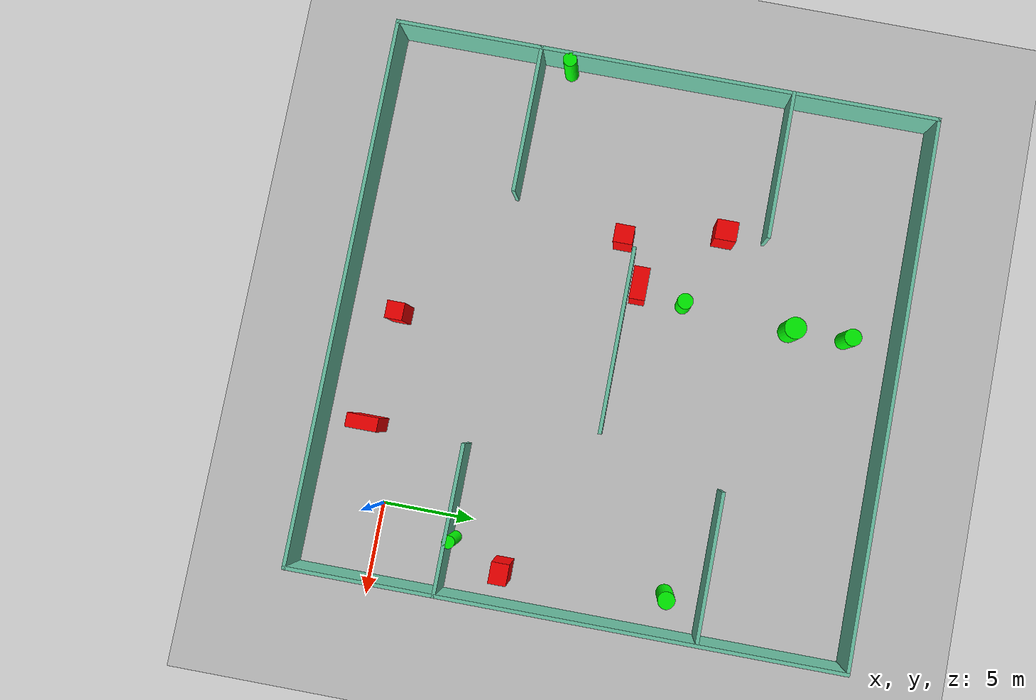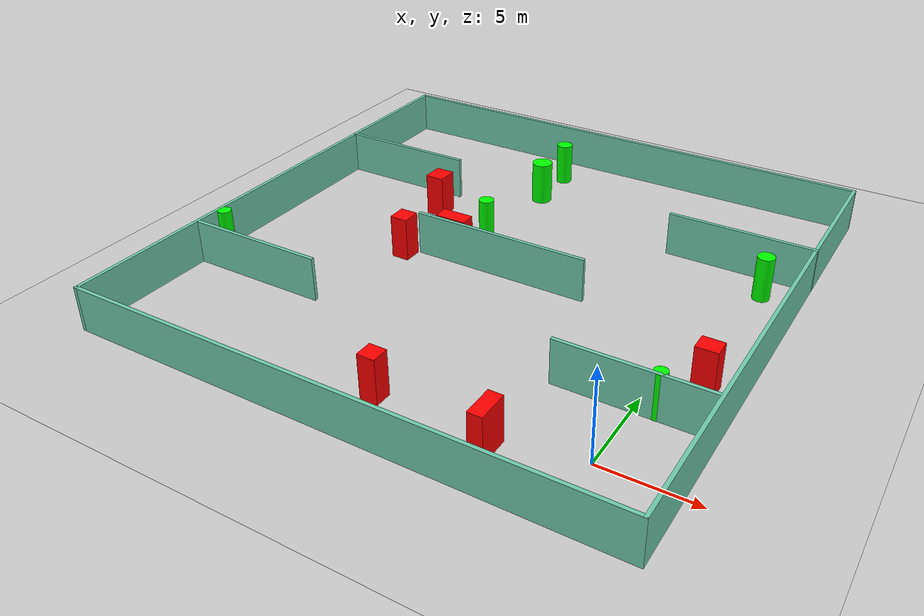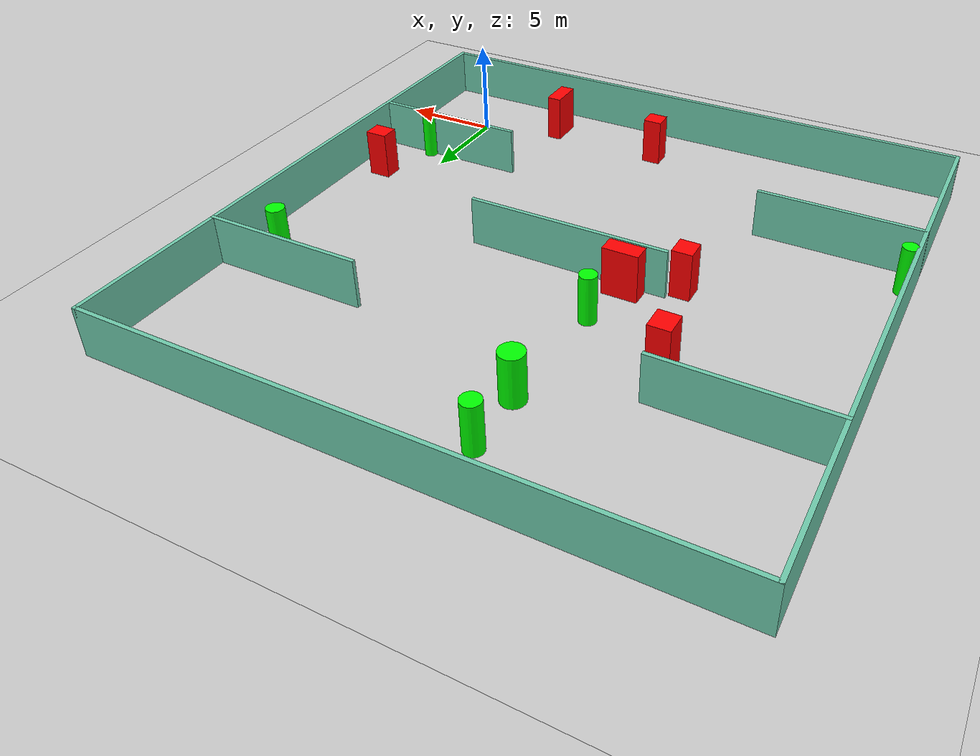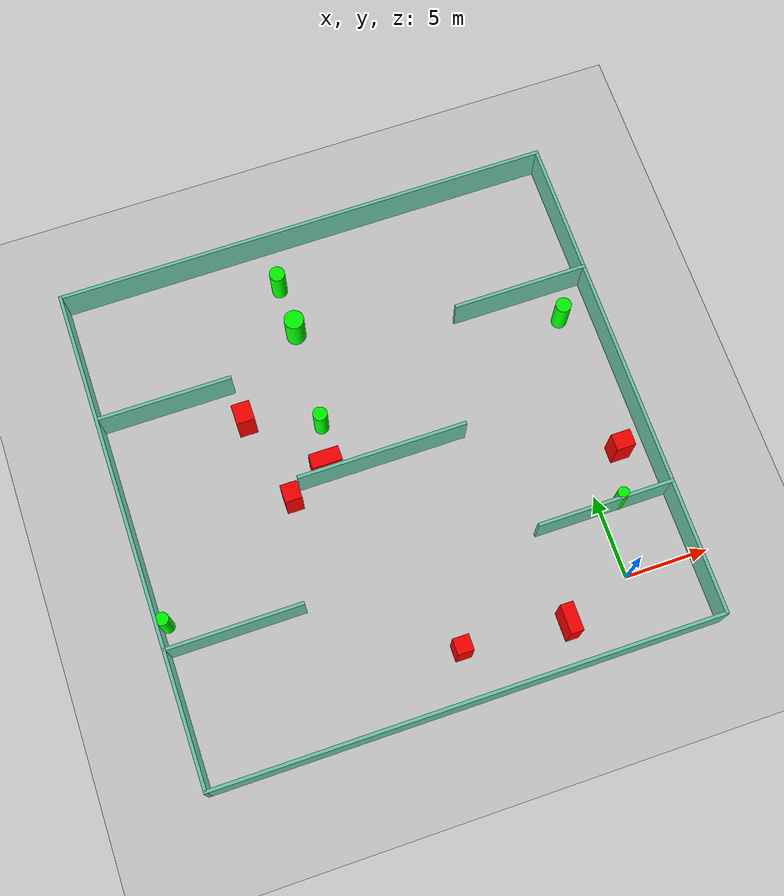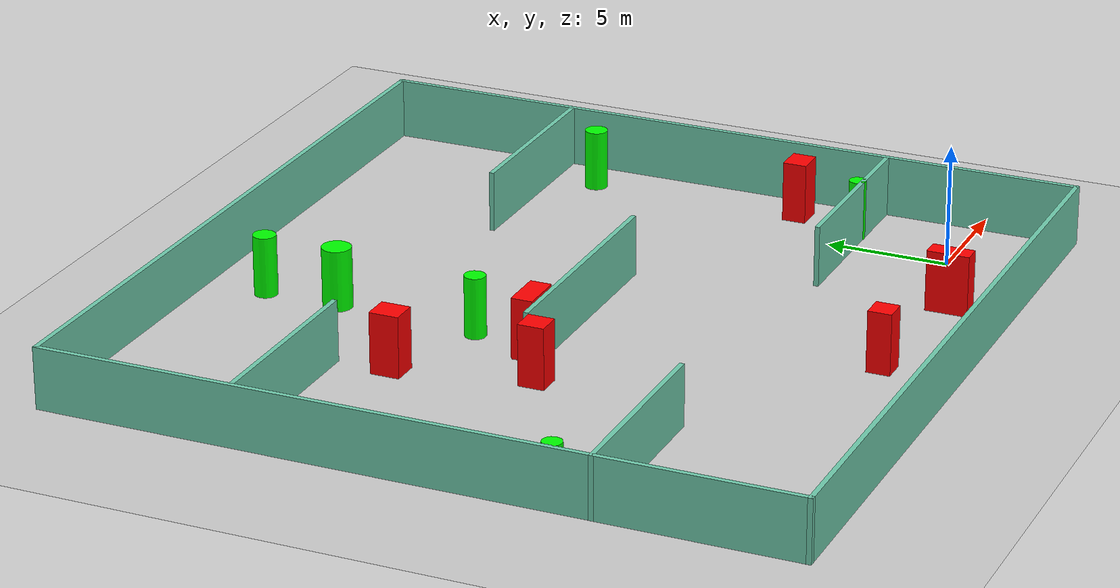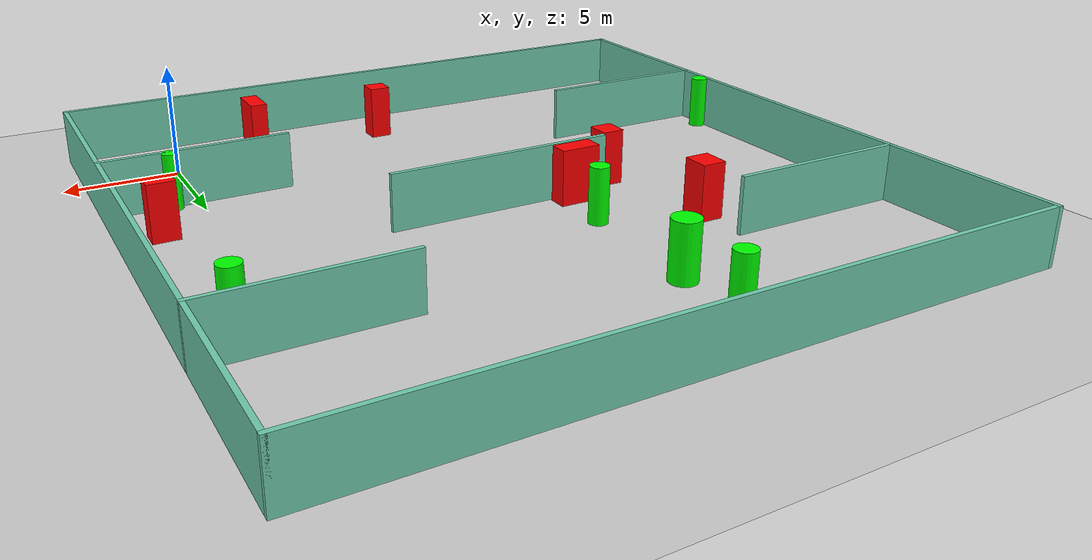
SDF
<sdf version="1.7">
 <world name="default">
  <light name="sun" type="directional">
   <pose>0 0 10 0 -0 0</pose>
   <diffuse>0.8 0.8 0.8 1</diffuse>
   <specular>0.2 0.2 0.2 1</specular>
   <attenuation>
    <range>1000</range>
    <constant>0.9</constant>
    <linear>0.01</linear>
    <quadratic>0.001</quadratic>
   </attenuation>
   <direction>-0.5 0.1 -0.9</direction>
   <spot><inner_angle>0</inner_angle><outer_angle>0</outer_angle><falloff>0</falloff></spot>
  </light>
  <model name="ground_plane">
   <static>1</static>
   <link name="link">
    <collision name="collision">
     <geometry><plane><normal>0 0 1</normal><size>100 100</size></plane></geometry>
     <surface>
      <contact><collide_bitmask>65535</collide_bitmask></contact>
      <friction><ode><mu>100</mu><mu2>50</mu2></ode></friction>
     </surface>
    </collision>
    <visual name="visual">
     <cast_shadows>0</cast_shadows>
     <geometry><plane><normal>0 0 1</normal><size>100 100</size></plane></geometry>
     <material>
      <script><uri>file://media/materials/scripts/gazebo.material</uri><name>Gazebo/Grey</name></script>
     </material>
    </visual>
   </link>
  </model>
  <gravity>0 0 -9.8</gravity>
  <magnetic_field>6e-06 2.3e-05 -4.2e-05</magnetic_field>
  <atmosphere type="adiabatic"/>
  <physics type="ode">
   <max_step_size>0.001</max_step_size>
   <real_time_factor>1</real_time_factor>
   <real_time_update_rate>1000</real_time_update_rate>
  </physics>
  <scene><ambient>0.4 0.4 0.4 1</ambient><background>0.7 0.7 0.7 1</background><shadows>1</shadows></scene>
  <spherical_coordinates>
   <surface_model>EARTH_WGS84</surface_model>
   <latitude_deg>0</latitude_deg>
   <longitude_deg>0</longitude_deg>
   <elevation>0</elevation>
   <heading_deg>0</heading_deg>
  </spherical_coordinates>
  <model name="my_base_walls">
   <link name="Wall_10">
    <collision name="Wall_10_Collision">
     <geometry><box><size>8.2 0.2 2.5</size></box></geometry>
     <pose>0 0 1.25 0 -0 0</pose>
    </collision>
    <visual name="Wall_10_Visual">
     <pose>0 0 1.25 0 -0 0</pose>
     <geometry><box><size>8.2 0.2 2.5</size></box></geometry>
     <material>
      <script><uri>file://media/materials/scripts/gazebo.material</uri><name>Gazebo/Grey</name></script>
      <ambient>0.435294 0.796078 0.67451 1</ambient>
     </material>
     <meta><layer>0</layer></meta>
    </visual>
    <pose>-11 -7 0 0 -0 0</pose>
   </link>
   <link name="Wall_12">
    <collision name="Wall_12_Collision">
     <geometry><box><size>8.2 0.2 2.5</size></box></geometry>
     <pose>0 0 1.25 0 -0 0</pose>
    </collision>
    <visual name="Wall_12_Visual">
     <pose>0 0 1.25 0 -0 0</pose>
     <geometry><box><size>8.2 0.2 2.5</size></box></geometry>
     <material>
      <script><uri>file://media/materials/scripts/gazebo.material</uri><name>Gazebo/Grey</name></script>
      <ambient>0.435294 0.796078 0.67451 1</ambient>
     </material>
     <meta><layer>0</layer></meta>
    </visual>
    <pose>-11 7 0 0 -0 0</pose>
   </link>
   <link name="Wall_14">
    <collision name="Wall_14_Collision">
     <geometry><box><size>8.2 0.2 2.5</size></box></geometry>
     <pose>0 0 1.25 0 -0 0</pose>
    </collision>
    <visual name="Wall_14_Visual">
     <pose>0 0 1.25 0 -0 0</pose>
     <geometry><box><size>8.2 0.2 2.5</size></box></geometry>
     <material>
      <script><uri>file://media/materials/scripts/gazebo.material</uri><name>Gazebo/Grey</name></script>
      <ambient>0.435294 0.796078 0.67451 1</ambient>
     </material>
     <meta><layer>0</layer></meta>
    </visual>
    <pose>11 7 0 0 -0 3.14159</pose>
   </link>
   <link name="Wall_16">
    <collision name="Wall_16_Collision">
     <geometry><box><size>10.2 0.2 2.5</size></box></geometry>
     <pose>0 0 1.25 0 -0 0</pose>
    </collision>
    <visual name="Wall_16_Visual">
     <pose>0 0 1.25 0 -0 0</pose>
     <geometry><box><size>10.2 0.2 2.5</size></box></geometry>
     <material>
      <script><uri>file://media/materials/scripts/gazebo.material</uri><name>Gazebo/Grey</name></script>
      <ambient>0.435294 0.796078 0.67451 1</ambient>
     </material>
     <meta><layer>0</layer></meta>
    </visual>
    <pose>0 0 0 0 -0 3.14159</pose>
   </link>
   <link name="Wall_2">
    <collision name="Wall_2_Collision">
     <geometry><box><size>30.2 0.2 2.5</size></box></geometry>
     <pose>0 0 1.25 0 -0 0</pose>
    </collision>
    <visual name="Wall_2_Visual">
     <pose>0 0 1.25 0 -0 0</pose>
     <geometry><box><size>30.2 0.2 2.5</size></box></geometry>
     <material>
      <script><uri>file://media/materials/scripts/gazebo.material</uri><name>Gazebo/Grey</name></script>
      <ambient>0.435294 0.796078 0.67451 1</ambient>
     </material>
     <meta><layer>0</layer></meta>
    </visual>
    <pose>0 -15 0 0 -0 3.14159</pose>
   </link>
   <link name="Wall_3">
    <collision name="Wall_3_Collision">
     <geometry><box><size>30.2 0.2 2.5</size></box></geometry>
     <pose>0 0 1.25 0 -0 0</pose>
    </collision>
    <visual name="Wall_3_Visual">
     <pose>0 0 1.25 0 -0 0</pose>
     <geometry><box><size>30.2 0.2 2.5</size></box></geometry>
     <material>
      <script><uri>file://media/materials/scripts/gazebo.material</uri><name>Gazebo/Grey</name></script>
      <ambient>0.435294 0.796078 0.67451 1</ambient>
     </material>
     <meta><layer>0</layer></meta>
    </visual>
    <pose>-15 0 0 0 -0 1.5708</pose>
   </link>
   <link name="Wall_4">
    <collision name="Wall_4_Collision">
     <geometry><box><size>30.2 0.2 2.5</size></box></geometry>
     <pose>0 0 1.25 0 -0 0</pose>
    </collision>
    <visual name="Wall_4_Visual">
     <pose>0 0 1.25 0 -0 0</pose>
     <geometry><box><size>30.2 0.2 2.5</size></box></geometry>
     <material>
      <script><uri>file://media/materials/scripts/gazebo.material</uri><name>Gazebo/Grey</name></script>
      <ambient>0.435294 0.796078 0.67451 1</ambient>
     </material>
     <meta><layer>0</layer></meta>
    </visual>
    <pose>0 15 0 0 -0 0</pose>
   </link>
   <link name="Wall_6">
    <collision name="Wall_6_Collision">
     <geometry><box><size>30.2 0.2 2.5</size></box></geometry>
     <pose>0 0 1.25 0 -0 0</pose>
    </collision>
    <visual name="Wall_6_Visual">
     <pose>0 0 1.25 0 -0 0</pose>
     <geometry><box><size>30.2 0.2 2.5</size></box></geometry>
     <material>
      <script><uri>file://media/materials/scripts/gazebo.material</uri><name>Gazebo/Grey</name></script>
      <ambient>0.435294 0.796078 0.67451 1</ambient>
     </material>
     <meta><layer>0</layer></meta>
    </visual>
    <pose>15 0 0 0 -0 1.5708</pose>
   </link>
   <link name="Wall_8">
    <collision name="Wall_8_Collision">
     <geometry><box><size>8.2 0.2 2.5</size></box></geometry>
     <pose>0 0 1.25 0 -0 0</pose>
    </collision>
    <visual name="Wall_8_Visual">
     <pose>0 0 1.25 0 -0 0</pose>
     <geometry><box><size>8.2 0.2 2.5</size></box></geometry>
     <material>
      <script><uri>file://media/materials/scripts/gazebo.material</uri><name>Gazebo/Grey</name></script>
      <ambient>0.435294 0.796078 0.67451 1</ambient>
     </material>
     <meta><layer>0</layer></meta>
    </visual>
    <pose>11 -7 0 0 -0 3.14159</pose>
   </link>
   <static>1</static>
   <pose>-11 11 0 0 -0 0</pose>
  </model>
  <model name="cylinder1">
   <static>1</static>
   <link name="link">
    <inertial>
     <mass>1</mass>
     <inertia><ixx>0.5</ixx><ixy>0</ixy><ixz>0</ixz><iyy>0.5</iyy><iyz>0</iyz><izz>1</izz></inertia>
    </inertial>
    <collision name="collision">
     <geometry><cylinder><radius>0.38664726957506723</radius><length>2.5</length></cylinder></geometry>
    </collision>
    <visual name="visual">
     <geometry><cylinder><radius>0.38664726957506723</radius><length>2.5</length></cylinder></geometry>
     <material>
      <ambient>0 1 0 1</ambient>
      <diffuse>0 1 0 1</diffuse>
      <specular>0.1 0.1 0.1 1</specular>
      <emissive>0 0 0 0</emissive>
     </material>
    </visual>
   </link>
   <pose>-25.609245267243942 5.66024538223391 1.25 0 0 0</pose>
  </model>
  <model name="cylinder2">
   <static>1</static>
   <link name="link">
    <inertial>
     <mass>1</mass>
     <inertia><ixx>0.5</ixx><ixy>0</ixy><ixz>0</ixz><iyy>0.5</iyy><iyz>0</iyz><izz>1</izz></inertia>
    </inertial>
    <collision name="collision">
     <geometry><cylinder><radius>0.43000938349223466</radius><length>2.5</length></cylinder></geometry>
    </collision>
    <visual name="visual">
     <geometry><cylinder><radius>0.43000938349223466</radius><length>2.5</length></cylinder></geometry>
     <material>
      <ambient>0 1 0 1</ambient>
      <diffuse>0 1 0 1</diffuse>
      <specular>0.1 0.1 0.1 1</specular>
      <emissive>0 0 0 0</emissive>
     </material>
    </visual>
   </link>
   <pose>-13.702718716204647 14.205847454882395 1.25 0 0 0</pose>
  </model>
  <model name="cylinder3">
   <static>1</static>
   <link name="link">
    <inertial>
     <mass>1</mass>
     <inertia><ixx>0.5</ixx><ixy>0</ixy><ixz>0</ixz><iyy>0.5</iyy><iyz>0</iyz><izz>1</izz></inertia>
    </inertial>
    <collision name="collision">
     <geometry><cylinder><radius>0.46886028089248605</radius><length>2.5</length></cylinder></geometry>
    </collision>
    <visual name="visual">
     <geometry><cylinder><radius>0.46886028089248605</radius><length>2.5</length></cylinder></geometry>
     <material>
      <ambient>0 1 0 1</ambient>
      <diffuse>0 1 0 1</diffuse>
      <specular>0.1 0.1 0.1 1</specular>
      <emissive>0 0 0 0</emissive>
     </material>
    </visual>
   </link>
   <pose>-13.422636134326922 23.36019771319757 1.25 0 0 0</pose>
  </model>
  <model name="cylinder4">
   <static>1</static>
   <link name="link">
    <inertial>
     <mass>1</mass>
     <inertia><ixx>0.5</ixx><ixy>0</ixy><ixz>0</ixz><iyy>0.5</iyy><iyz>0</iyz><izz>1</izz></inertia>
    </inertial>
    <collision name="collision">
     <geometry><cylinder><radius>0.5972197814090061</radius><length>2.5</length></cylinder></geometry>
    </collision>
    <visual name="visual">
     <geometry><cylinder><radius>0.5972197814090061</radius><length>2.5</length></cylinder></geometry>
     <material>
      <ambient>0 1 0 1</ambient>
      <diffuse>0 1 0 1</diffuse>
      <specular>0.1 0.1 0.1 1</specular>
      <emissive>0 0 0 0</emissive>
     </material>
    </visual>
   </link>
   <pose>-13.363458764739203 20.257376316251044 1.25 0 0 0</pose>
  </model>
  <model name="cylinder5">
   <static>1</static>
   <link name="link">
    <inertial>
     <mass>1</mass>
     <inertia><ixx>0.5</ixx><ixy>0</ixy><ixz>0</ixz><iyy>0.5</iyy><iyz>0</iyz><izz>1</izz></inertia>
    </inertial>
    <collision name="collision">
     <geometry><cylinder><radius>0.34823906100065266</radius><length>2.5</length></cylinder></geometry>
    </collision>
    <visual name="visual">
     <geometry><cylinder><radius>0.34823906100065266</radius><length>2.5</length></cylinder></geometry>
     <material>
      <ambient>0 1 0 1</ambient>
      <diffuse>0 1 0 1</diffuse>
      <specular>0.1 0.1 0.1 1</specular>
      <emissive>0 0 0 0</emissive>
     </material>
    </visual>
   </link>
   <pose>1.1176326992552852 4.223423032907782 1.25 0 0 0</pose>
  </model>
  <model name="cylinder6">
   <static>1</static>
   <link name="link">
    <inertial>
     <mass>1</mass>
     <inertia><ixx>0.5</ixx><ixy>0</ixy><ixz>0</ixz><iyy>0.5</iyy><iyz>0</iyz><izz>1</izz></inertia>
    </inertial>
    <collision name="collision">
     <geometry><cylinder><radius>0.46826885982098254</radius><length>2.5</length></cylinder></geometry>
    </collision>
    <visual name="visual">
     <geometry><cylinder><radius>0.46826885982098254</radius><length>2.5</length></cylinder></geometry>
     <material>
      <ambient>0 1 0 1</ambient>
      <diffuse>0 1 0 1</diffuse>
      <specular>0.1 0.1 0.1 1</specular>
      <emissive>0 0 0 0</emissive>
     </material>
    </visual>
   </link>
   <pose>1.9860262039058156 16.036882532984833 1.25 0 0 0</pose>
  </model>
  <model name="box1">
   <static>1</static>
   <link name="link">
    <inertial>
     <mass>1</mass>
     <inertia><ixx>0.083</ixx><ixy>0</ixy><ixz>0</ixz><iyy>0.083</iyy><iyz>0</iyz><izz>0.083</izz></inertia>
    </inertial>
    <collision name="collision">
     <geometry><box><size>0.7683344440097097 1.7163846555458009 2.5</size></box></geometry>
    </collision>
    <visual name="visual">
     <geometry><box><size>0.7683344440097097 1.7163846555458009 2.5</size></box></geometry>
     <material>
      <ambient>1 0 0 1</ambient>
      <diffuse>1 0 0 1</diffuse>
      <specular>0.1 0.1 0.1 1</specular>
      <emissive>0 0 0 0</emissive>
     </material>
    </visual>
    <sensor name="my_contact" type="contact">
     <contact><collision>box_collision</collision><topic>__default_topic__</topic></contact>
    </sensor>
   </link>
   <pose>-4.203975093721734 -1.5156340289380004 1.25 0 0 0</pose>
  </model>
  <model name="box2">
   <static>1</static>
   <link name="link">
    <inertial>
     <mass>1</mass>
     <inertia><ixx>0.083</ixx><ixy>0</ixy><ixz>0</ixz><iyy>0.083</iyy><iyz>0</iyz><izz>0.083</izz></inertia>
    </inertial>
    <collision name="collision">
     <geometry><box><size>1.791701707910549 0.8733714013140466 2.5</size></box></geometry>
    </collision>
    <visual name="visual">
     <geometry><box><size>1.791701707910549 0.8733714013140466 2.5</size></box></geometry>
     <material>
      <ambient>1 0 0 1</ambient>
      <diffuse>1 0 0 1</diffuse>
      <specular>0.1 0.1 0.1 1</specular>
      <emissive>0 0 0 0</emissive>
     </material>
    </visual>
    <sensor name="my_contact" type="contact">
     <contact><collision>box_collision</collision><topic>__default_topic__</topic></contact>
    </sensor>
   </link>
   <pose>-14.219535588287382 11.6288693772458 1.25 0 0 0</pose>
  </model>
  <model name="box3">
   <static>1</static>
   <link name="link">
    <inertial>
     <mass>1</mass>
     <inertia><ixx>0.083</ixx><ixy>0</ixy><ixz>0</ixz><iyy>0.083</iyy><iyz>0</iyz><izz>0.083</izz></inertia>
    </inertial>
    <collision name="collision">
     <geometry><box><size>1.0126215533944043 1.0628049644523498 2.5</size></box></geometry>
    </collision>
    <visual name="visual">
     <geometry><box><size>1.0126215533944043 1.0628049644523498 2.5</size></box></geometry>
     <material>
      <ambient>1 0 0 1</ambient>
      <diffuse>1 0 0 1</diffuse>
      <specular>0.1 0.1 0.1 1</specular>
      <emissive>0 0 0 0</emissive>
     </material>
    </visual>
    <sensor name="my_contact" type="contact">
     <contact><collision>box_collision</collision><topic>__default_topic__</topic></contact>
    </sensor>
   </link>
   <pose>-16.68504308641849 10.315768374138084 1.25 0 0 0</pose>
  </model>
  <model name="box4">
   <static>1</static>
   <link name="link">
    <inertial>
     <mass>1</mass>
     <inertia><ixx>0.083</ixx><ixy>0</ixy><ixz>0</ixz><iyy>0.083</iyy><iyz>0</iyz><izz>0.083</izz></inertia>
    </inertial>
    <collision name="collision">
     <geometry><box><size>0.9608759937563711 0.9558075426387383 2.5</size></box></geometry>
    </collision>
    <visual name="visual">
     <geometry><box><size>0.9608759937563711 0.9558075426387383 2.5</size></box></geometry>
     <material>
      <ambient>1 0 0 1</ambient>
      <diffuse>1 0 0 1</diffuse>
      <specular>0.1 0.1 0.1 1</specular>
      <emissive>0 0 0 0</emissive>
     </material>
    </visual>
    <sensor name="my_contact" type="contact">
     <contact><collision>box_collision</collision><topic>__default_topic__</topic></contact>
    </sensor>
   </link>
   <pose>-10.377375848544329 -0.9927286739645527 1.25 0 0 0</pose>
  </model>
  <model name="box5">
   <static>1</static>
   <link name="link">
    <inertial>
     <mass>1</mass>
     <inertia><ixx>0.083</ixx><ixy>0</ixy><ixz>0</ixz><iyy>0.083</iyy><iyz>0</iyz><izz>0.083</izz></inertia>
    </inertial>
    <collision name="collision">
     <geometry><box><size>1.155615836836219 0.9718322602966801 2.5</size></box></geometry>
    </collision>
    <visual name="visual">
     <geometry><box><size>1.155615836836219 0.9718322602966801 2.5</size></box></geometry>
     <material>
      <ambient>1 0 0 1</ambient>
      <diffuse>1 0 0 1</diffuse>
      <specular>0.1 0.1 0.1 1</specular>
      <emissive>0 0 0 0</emissive>
     </material>
    </visual>
    <sensor name="my_contact" type="contact">
     <contact><collision>box_collision</collision><topic>__default_topic__</topic></contact>
    </sensor>
   </link>
   <pose>2.2543443941565897 7.142730853543377 1.25 0 0 0</pose>
  </model>
  <model name="box6">
   <static>1</static>
   <link name="link">
    <inertial>
     <mass>1</mass>
     <inertia><ixx>0.083</ixx><ixy>0</ixy><ixz>0</ixz><iyy>0.083</iyy><iyz>0</iyz><izz>0.083</izz></inertia>
    </inertial>
    <collision name="collision">
     <geometry><box><size>1.0910531826282992 1.195329920643498 2.5</size></box></geometry>
    </collision>
    <visual name="visual">
     <geometry><box><size>1.0910531826282992 1.195329920643498 2.5</size></box></geometry>
     <material>
      <ambient>1 0 0 1</ambient>
      <diffuse>1 0 0 1</diffuse>
      <specular>0.1 0.1 0.1 1</specular>
      <emissive>0 0 0 0</emissive>
     </material>
    </visual>
    <sensor name="my_contact" type="contact">
     <contact><collision>box_collision</collision><topic>__default_topic__</topic></contact>
    </sensor>
   </link>
   <pose>-17.88936492690563 15.723343635735247 1.25 0 0 0</pose>
  </model>
 </world>
</sdf>
